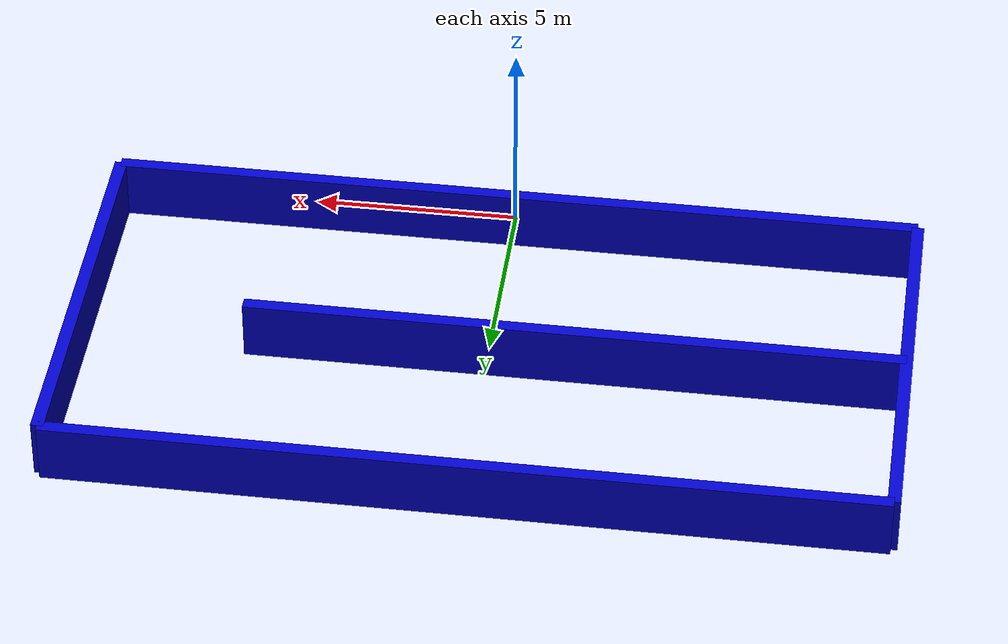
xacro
<?xml version="1.0"?>
<robot xmlns:xacro="http://www.ros.org/wiki/xacro" name="tomas-labyrinth">

  <material name="wall_color">
    <color rgba="0 0 0.8 1"/>
  </material>

  <xacro:macro name="make_wall" params="name length">
    <link name="${name}">
      <visual>
        <geometry>
          <box size="${length} 0.31 1.5"/>
        </geometry>
        <material name="wall_color"/>
      </visual>
      <collision>
        <geometry>
          <box size="${length} 0.31 1.5"/>
        </geometry>
      </collision>
      <inertial>
        <origin rpy="0 0 0" xyz="0 0 0"/>
        <mass value="0.5"/>
        <inertia ixx="1" ixy="0" ixz="0" iyy="1" iyz="0" izz="1"/>
      </inertial>
    </link>
  </xacro:macro>

  <xacro:make_wall name="left_wall" length="20"/>
  <xacro:make_wall name="right_wall" length="20"/>

  <joint name="wall_left_right" type="fixed">
    <parent link="left_wall"/>
    <child link="right_wall"/>
    <origin xyz="0 10 0"/>
  </joint>

  <xacro:make_wall name="north_wall" length="10" />
  <xacro:make_wall name="south_wall" length="10" />

  <joint name="wall_left_north" type="fixed">
    <parent link="left_wall"/>
    <child link="north_wall"/>
    <origin xyz="10 5 0" rpy="0 0 1.57079"/>
  </joint>

  <joint name="wall_left_south" type="fixed">
    <parent link="left_wall"/>
    <child link="south_wall"/>
    <origin xyz="-10 5 0" rpy="0 0 1.57079"/>
  </joint>

  <xacro:make_wall name="middle_wall" length="16" />

  <joint name="wall_left_middle" type="fixed">
    <parent link="left_wall"/>
    <child link="middle_wall"/>
    <origin xyz="-2 5 0"/>
  </joint>

</robot>
